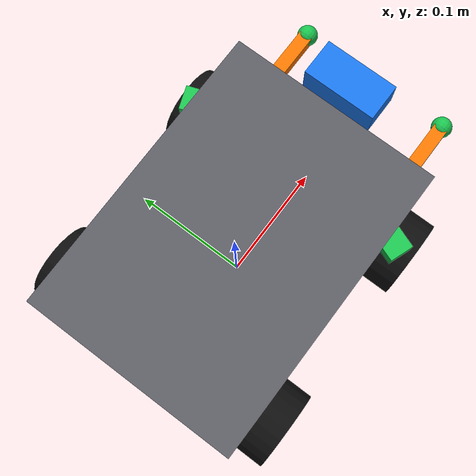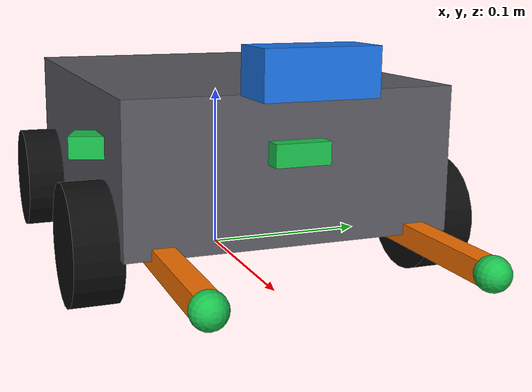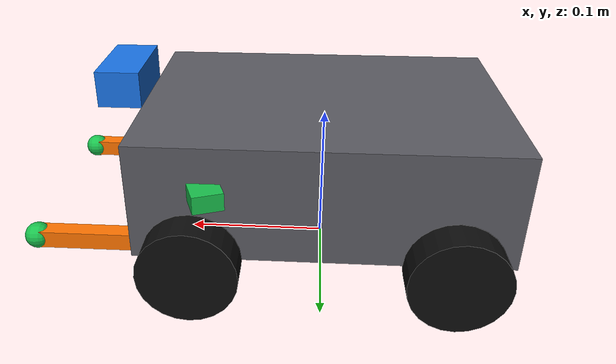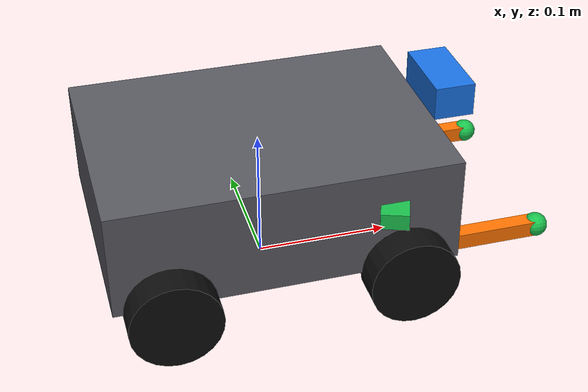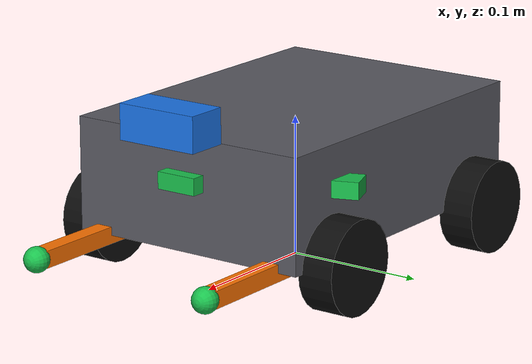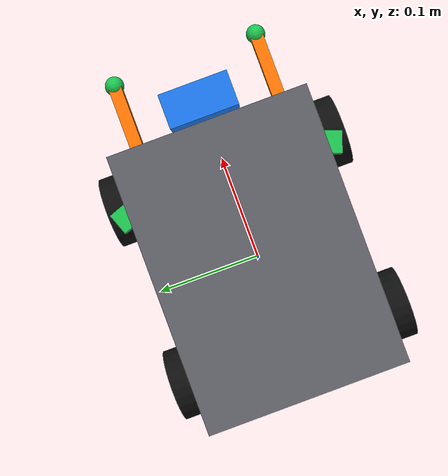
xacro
<?xml version="1.0"?>
<robot name="bilei" xmlns:xacro="http://www.ros.org/wiki/xacro">

  <!-- =========================================================
       1. 全局参数：以后改尺寸只动这里
       ========================================================= -->
  <xacro:property name="body_x"       value="0.250"/>
  <xacro:property name="body_y"       value="0.180"/>
  <xacro:property name="body_z"       value="0.080"/>
  <xacro:property name="body_mass"    value="0.600"/>

  <xacro:property name="wheel_radius" value="0.033"/>
  <xacro:property name="wheel_width"  value="0.026"/>
  <xacro:property name="wheel_mass"   value="0.050"/>
  <xacro:property name="wheel_sep"    value="0.200"/>   <!-- 左右轮中心距，标定用 -->
  <xacro:property name="wheel_base"   value="0.170"/>   <!-- 前后轮中心距 -->

  <xacro:property name="leg_length"   value="0.090"/>
  <xacro:property name="leg_mass"     value="0.030"/>

  <xacro:property name="ground_clearance" value="${wheel_radius}"/>

  <!-- =========================================================
       2. 材质
       ========================================================= -->
  <material name="gray">  <color rgba="0.35 0.35 0.38 1"/></material>
  <material name="black"> <color rgba="0.05 0.05 0.05 1"/></material>
  <material name="orange"><color rgba="1.00 0.45 0.00 1"/></material>
  <material name="blue">  <color rgba="0.10 0.45 0.90 1"/></material>
  <material name="green"> <color rgba="0.10 0.75 0.30 1"/></material>

  <!-- =========================================================
       3. 惯量宏
       ========================================================= -->
  <xacro:macro name="box_inertia" params="m x y z">
    <inertial>
      <mass value="${m}"/>
      <inertia ixx="${m*(y*y+z*z)/12}" ixy="0" ixz="0"
               iyy="${m*(x*x+z*z)/12}" iyz="0"
               izz="${m*(x*x+y*y)/12}"/>
    </inertial>
  </xacro:macro>

  <xacro:macro name="cyl_inertia" params="m r h">
    <inertial>
      <mass value="${m}"/>
      <inertia ixx="${m*(3*r*r+h*h)/12}" ixy="0" ixz="0"
               iyy="${m*(3*r*r+h*h)/12}" iyz="0"
               izz="${m*r*r/2}"/>
    </inertial>
  </xacro:macro>

  <!-- =========================================================
       4. 车体
       ========================================================= -->
  <link name="base_footprint"/>

  <joint name="base_joint" type="fixed">
    <parent link="base_footprint"/>
    <child  link="base_link"/>
    <origin xyz="0 0 ${ground_clearance + body_z/2}" rpy="0 0 0"/>
  </joint>

  <link name="base_link">
    <visual>
      <geometry><box size="${body_x} ${body_y} ${body_z}"/></geometry>
      <material name="gray"/>
    </visual>
    <collision>
      <geometry><box size="${body_x} ${body_y} ${body_z}"/></geometry>
    </collision>
    <xacro:box_inertia m="${body_mass}" x="${body_x}" y="${body_y}" z="${body_z}"/>
  </link>

  <!-- =========================================================
       5. 轮子宏：4 个轮子复用一个宏
       ========================================================= -->
  <xacro:macro name="wheel" params="name x y">
    <link name="${name}_link">
      <visual>
        <origin xyz="0 0 0" rpy="${pi/2} 0 0"/>
        <geometry><cylinder radius="${wheel_radius}" length="${wheel_width}"/></geometry>
        <material name="black"/>
      </visual>
      <collision>
        <origin xyz="0 0 0" rpy="${pi/2} 0 0"/>
        <geometry><cylinder radius="${wheel_radius}" length="${wheel_width}"/></geometry>
      </collision>
      <xacro:cyl_inertia m="${wheel_mass}" r="${wheel_radius}" h="${wheel_width}"/>
    </link>

    <joint name="${name}_joint" type="continuous">
      <parent link="base_link"/>
      <child  link="${name}_link"/>
      <origin xyz="${x} ${y} ${-(body_z/2)}" rpy="0 0 0"/>
      <axis xyz="0 1 0"/>
    </joint>
  </xacro:macro>

  <xacro:wheel name="wheel_fl" x="${ wheel_base/2}" y="${ wheel_sep/2}"/>
  <xacro:wheel name="wheel_fr" x="${ wheel_base/2}" y="${-wheel_sep/2}"/>
  <xacro:wheel name="wheel_rl" x="${-wheel_base/2}" y="${ wheel_sep/2}"/>
  <xacro:wheel name="wheel_rr" x="${-wheel_base/2}" y="${-wheel_sep/2}"/>

  <xacro:macro name="leg" params="name x y">
    <link name="${name}_leg">
      <visual>
        <origin xyz="0 0 ${-leg_length/2}"/>
        <geometry><box size="0.012 0.012 ${leg_length}"/></geometry>
        <material name="orange"/>
      </visual>
      <collision>
        <origin xyz="0 0 ${-leg_length/2}"/>
        <geometry><box size="0.012 0.012 ${leg_length}"/></geometry>
      </collision>
      <xacro:box_inertia m="${leg_mass}" x="0.012" y="0.012" z="${leg_length}"/>
    </link>

    <joint name="${name}_leg_joint" type="revolute">
      <parent link="base_link"/>
      <child  link="${name}_leg"/>
      <origin xyz="${x} ${y} ${-body_z/2}" rpy="0 ${-pi/2} 0"/>
      <axis xyz="0 1 0"/>
      <limit lower="0.0" upper="1.5708" effort="2.0" velocity="3.0"/>
      <dynamics damping="0.02" friction="0.01"/>
    </joint>

    <link name="${name}_foot">
      <visual>
        <geometry><sphere radius="0.009"/></geometry>
        <material name="green"/>
      </visual>
      <collision>
        <geometry><sphere radius="0.009"/></geometry>
      </collision>
      <xacro:box_inertia m="0.005" x="0.018" y="0.018" z="0.018"/>
    </link>

    <joint name="${name}_foot_joint" type="fixed">
      <parent link="${name}_leg"/>
      <child  link="${name}_foot"/>
      <origin xyz="0 0 ${-leg_length}" rpy="0 0 0"/>
    </joint>
  </xacro:macro>

  <xacro:leg name="leg_fl" x="${ body_x/2 - 0.02}" y="${ body_y/2 - 0.02}"/>
  <xacro:leg name="leg_fr" x="${ body_x/2 - 0.02}" y="${-body_y/2 + 0.02}"/>
  <xacro:leg name="leg_rl" x="${-body_x/2 + 0.02}" y="${ body_y/2 - 0.02}"/>
  <xacro:leg name="leg_rr" x="${-body_x/2 + 0.02}" y="${-body_y/2 + 0.02}"/>

  <!-- =========================================================
       7. 传感器：相机 + 3 路超声波
       ========================================================= -->
  <link name="camera_link">
    <visual>
      <geometry><box size="0.030 0.060 0.025"/></geometry>
      <material name="blue"/>
    </visual>
    <xacro:box_inertia m="0.020" x="0.030" y="0.060" z="0.025"/>
  </link>

  <joint name="camera_joint" type="fixed">
    <parent link="base_link"/>
    <child  link="camera_link"/>
    <origin xyz="${body_x/2 + 0.015} 0 ${body_z/2 + 0.012}" rpy="0 0 0"/>
  </joint>

  <xacro:macro name="sonar" params="name x y yaw">
    <link name="${name}_link">
      <visual>
        <geometry><box size="0.020 0.030 0.012"/></geometry>
        <material name="green"/>
      </visual>
      <xacro:box_inertia m="0.008" x="0.020" y="0.030" z="0.012"/>
    </link>
    <joint name="${name}_joint" type="fixed">
      <parent link="base_link"/>
      <child  link="${name}_link"/>
      <origin xyz="${x} ${y} 0.010" rpy="0 0 ${yaw}"/>
    </joint>
  </xacro:macro>

  <xacro:sonar name="sonar_front" x="${body_x/2}" y="0"             yaw="0"/>
  <xacro:sonar name="sonar_left"  x="${body_x/2 - 0.05}" y="${ body_y/2}" yaw="${ 0.35}"/>
  <xacro:sonar name="sonar_right" x="${body_x/2 - 0.05}" y="${-body_y/2}" yaw="${-0.35}"/>

  <!-- =========================================================
       8. Gazebo 专用插件（RViz 下不生效）
       ========================================================= -->
  <xacro:include filename="$(find bilei_description)/urdf/bilei.gazebo.xacro"/>

</robot>
